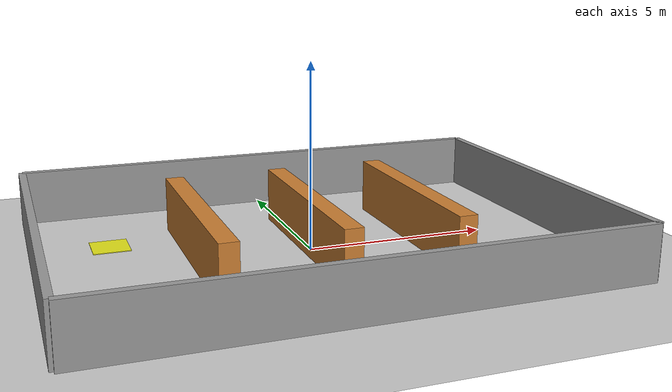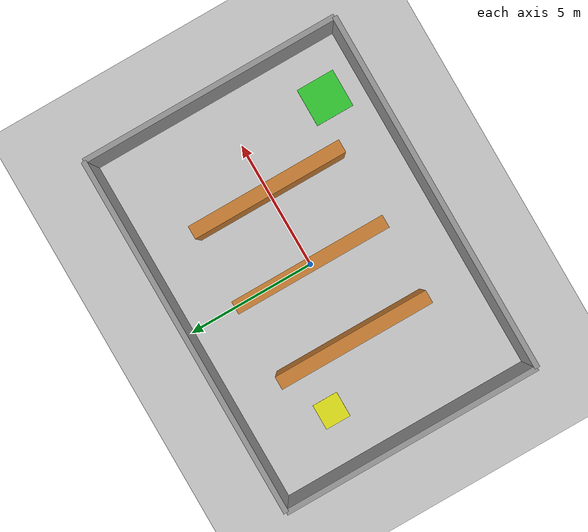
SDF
<sdf version="1.9">
 <world name="warehouse">
  <physics name="1ms" type="ignored">
   <max_step_size>0.001</max_step_size>
   <real_time_factor>1.0</real_time_factor>
  </physics>
  <plugin filename="gz-sim-physics-system" name="gz::sim::systems::Physics"/>
  <plugin filename="gz-sim-user-commands-system" name="gz::sim::systems::UserCommands"/>
  <plugin filename="gz-sim-scene-broadcaster-system" name="gz::sim::systems::SceneBroadcaster"/>
  <plugin filename="gz-sim-sensors-system" name="gz::sim::systems::Sensors">
   <render_engine>ogre2</render_engine>
  </plugin>
  <light type="directional" name="sun">
   <pose>0 0 10 0 0 0</pose>
   <diffuse>0.8 0.8 0.8 1</diffuse>
   <specular>0.2 0.2 0.2 1</specular>
   <direction>-0.5 0.1 -0.9</direction>
  </light>
  <model name="ground_plane">
   <static>true</static>
   <link name="link">
    <collision name="collision">
     <geometry><plane><normal>0 0 1</normal><size>100 100</size></plane></geometry>
    </collision>
    <visual name="visual">
     <geometry><plane><normal>0 0 1</normal><size>100 100</size></plane></geometry>
     <material><ambient>0.8 0.8 0.8 1</ambient><diffuse>0.8 0.8 0.8 1</diffuse></material>
    </visual>
   </link>
  </model>
  <model name="wall_north">
   <static>true</static>
   <pose>0 5 0.75 0 0 0</pose>
   <link name="link">
    <collision name="collision"><geometry><box><size>14 0.2 1.5</size></box></geometry></collision>
    <visual name="visual">
     <geometry><box><size>14 0.2 1.5</size></box></geometry>
     <material><ambient>0.6 0.6 0.6 1</ambient><diffuse>0.6 0.6 0.6 1</diffuse></material>
    </visual>
   </link>
  </model>
  <model name="wall_south">
   <static>true</static>
   <pose>0 -5 0.75 0 0 0</pose>
   <link name="link">
    <collision name="collision"><geometry><box><size>14 0.2 1.5</size></box></geometry></collision>
    <visual name="visual">
     <geometry><box><size>14 0.2 1.5</size></box></geometry>
     <material><ambient>0.6 0.6 0.6 1</ambient><diffuse>0.6 0.6 0.6 1</diffuse></material>
    </visual>
   </link>
  </model>
  <model name="wall_east">
   <static>true</static>
   <pose>7 0 0.75 0 0 1.5708</pose>
   <link name="link">
    <collision name="collision"><geometry><box><size>10 0.2 1.5</size></box></geometry></collision>
    <visual name="visual">
     <geometry><box><size>10 0.2 1.5</size></box></geometry>
     <material><ambient>0.6 0.6 0.6 1</ambient><diffuse>0.6 0.6 0.6 1</diffuse></material>
    </visual>
   </link>
  </model>
  <model name="wall_west">
   <static>true</static>
   <pose>-7 0 0.75 0 0 1.5708</pose>
   <link name="link">
    <collision name="collision"><geometry><box><size>10 0.2 1.5</size></box></geometry></collision>
    <visual name="visual">
     <geometry><box><size>10 0.2 1.5</size></box></geometry>
     <material><ambient>0.6 0.6 0.6 1</ambient><diffuse>0.6 0.6 0.6 1</diffuse></material>
    </visual>
   </link>
  </model>
  <model name="shelf_A">
   <static>true</static>
   <pose>-3 0 0.75 0 0 0</pose>
   <link name="link">
    <collision name="collision"><geometry><box><size>0.5 6 1.5</size></box></geometry></collision>
    <visual name="visual">
     <geometry><box><size>0.5 6 1.5</size></box></geometry>
     <material><ambient>0.8 0.5 0.2 1</ambient><diffuse>0.8 0.5 0.2 1</diffuse></material>
    </visual>
   </link>
  </model>
  <model name="shelf_B">
   <static>true</static>
   <pose>0 0 0.75 0 0 0</pose>
   <link name="link">
    <collision name="collision"><geometry><box><size>0.5 6 1.5</size></box></geometry></collision>
    <visual name="visual">
     <geometry><box><size>0.5 6 1.5</size></box></geometry>
     <material><ambient>0.8 0.5 0.2 1</ambient><diffuse>0.8 0.5 0.2 1</diffuse></material>
    </visual>
   </link>
  </model>
  <model name="shelf_C">
   <static>true</static>
   <pose>3 0 0.75 0 0 0</pose>
   <link name="link">
    <collision name="collision"><geometry><box><size>0.5 6 1.5</size></box></geometry></collision>
    <visual name="visual">
     <geometry><box><size>0.5 6 1.5</size></box></geometry>
     <material><ambient>0.8 0.5 0.2 1</ambient><diffuse>0.8 0.5 0.2 1</diffuse></material>
    </visual>
   </link>
  </model>
  <model name="delivery_station_marker">
   <static>true</static>
   <pose>5 -3.5 0.01 0 0 0</pose>
   <link name="link">
    <visual name="visual">
     <geometry><box><size>1.5 1.5 0.02</size></box></geometry>
     <material><ambient>0.2 0.8 0.2 1</ambient><diffuse>0.2 0.8 0.2 1</diffuse></material>
    </visual>
   </link>
  </model>
  <model name="pickup_marker">
   <static>true</static>
   <pose>-5 2 0.01 0 0 0</pose>
   <link name="link">
    <visual name="visual">
     <geometry><box><size>1.0 1.0 0.02</size></box></geometry>
     <material><ambient>0.9 0.9 0.1 1</ambient><diffuse>0.9 0.9 0.1 1</diffuse></material>
    </visual>
   </link>
  </model>
 </world>
</sdf>
